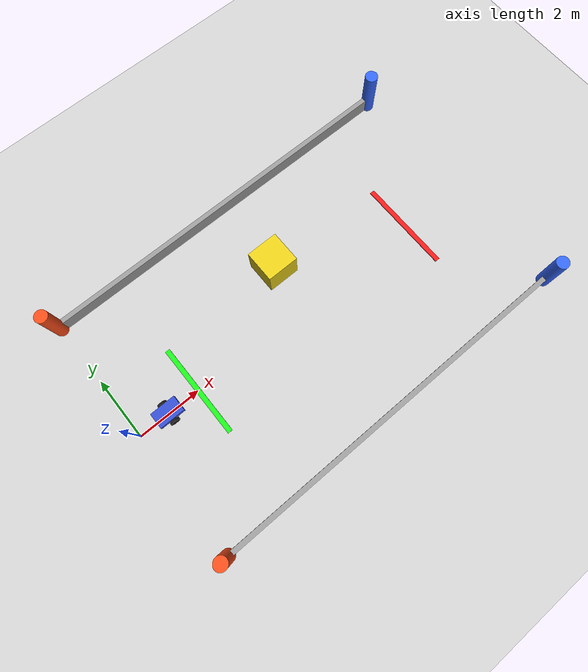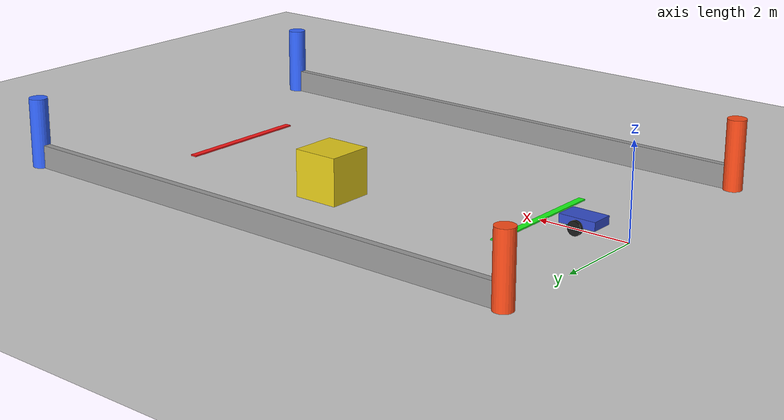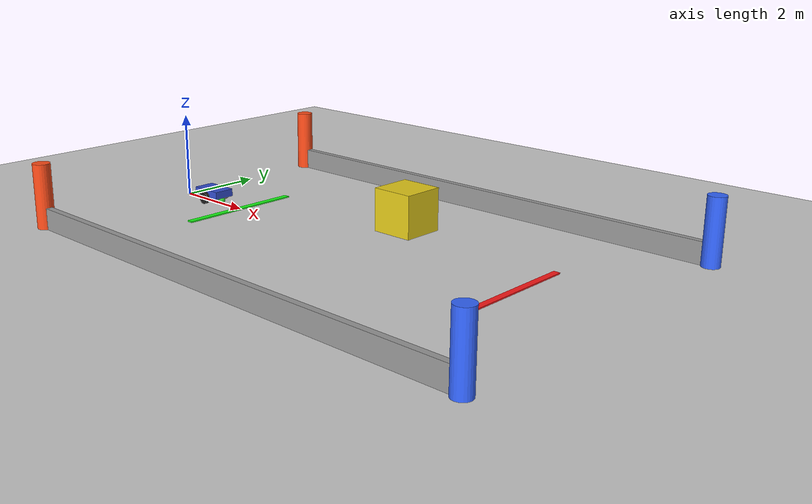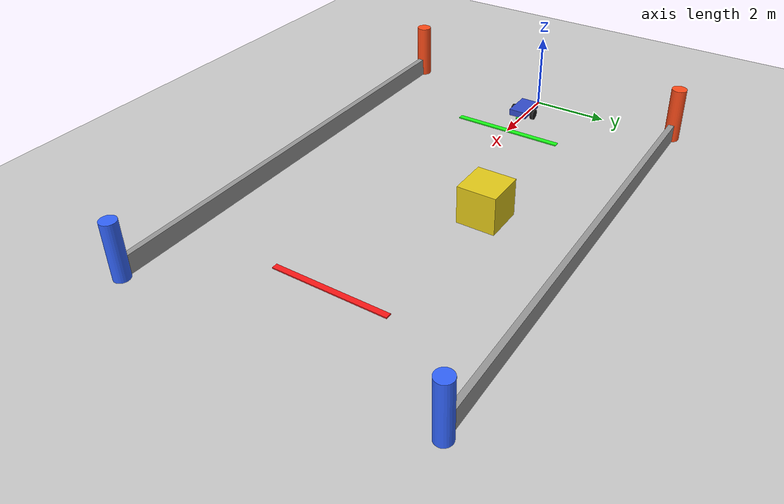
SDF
<?xml version="1.0" encoding="UTF-8"?>
<sdf version="1.9">
  <world name="uav_ugv">
    <physics type="ode">
      <max_step_size>0.004</max_step_size>
      <real_time_factor>1.0</real_time_factor>
      <real_time_update_rate>250</real_time_update_rate>
    </physics>
    <gravity>0 0 -9.8</gravity>
    <magnetic_field>6e-06 2.3e-05 -4.2e-05</magnetic_field>
    <atmosphere type="adiabatic"/>
    <scene>
      <grid>false</grid>
      <ambient>0.4 0.4 0.4 1</ambient>
      <background>0.7 0.7 0.7 1</background>
      <shadows>true</shadows>
    </scene>
    <model name="ground_plane">
      <static>true</static>
      <link name="link">
        <collision name="collision">
          <geometry>
            <plane>
              <normal>0 0 1</normal>
              <size>1 1</size>
            </plane>
          </geometry>
          <surface>
            <friction>
              <ode/>
            </friction>
            <bounce/>
            <contact/>
          </surface>
        </collision>
        <visual name="visual">
          <geometry>
            <plane>
              <normal>0 0 1</normal>
              <size>500 500</size>
            </plane>
          </geometry>
          <material>
            <ambient>0.8 0.8 0.8 1</ambient>
            <diffuse>0.8 0.8 0.8 1</diffuse>
            <specular>0.8 0.8 0.8 1</specular>
          </material>
        </visual>
        <pose>0 0 0 0 -0 0</pose>
        <inertial>
          <pose>0 0 0 0 -0 0</pose>
          <mass>1</mass>
          <inertia>
            <ixx>1</ixx>
            <ixy>0</ixy>
            <ixz>0</ixz>
            <iyy>1</iyy>
            <iyz>0</iyz>
            <izz>1</izz>
          </inertia>
        </inertial>
        <enable_wind>false</enable_wind>
      </link>
      <pose>0 0 0 0 -0 0</pose>
      <self_collide>false</self_collide>
    </model>
    <light name="sunUTC" type="directional">
      <pose>0 0 500 0 -0 0</pose>
      <cast_shadows>true</cast_shadows>
      <intensity>1</intensity>
      <direction>0.001 0.625 -0.78</direction>
      <diffuse>0.904 0.904 0.904 1</diffuse>
      <specular>0.271 0.271 0.271 1</specular>
      <attenuation>
        <range>2000</range>
        <linear>0</linear>
        <constant>1</constant>
        <quadratic>0</quadratic>
      </attenuation>
      <spot>
        <inner_angle>0</inner_angle>
        <outer_angle>0</outer_angle>
        <falloff>0</falloff>
      </spot>
    </light>
    <spherical_coordinates>
      <surface_model>EARTH_WGS84</surface_model>
      <world_frame_orientation>ENU</world_frame_orientation>
      <latitude_deg>47.397971057728974</latitude_deg>
      <longitude_deg> 8.546163739800146</longitude_deg>
      <elevation>0</elevation>
    </spherical_coordinates>
    <model name="simple_ugv">

      <pose>1 0 0 0 0 0</pose>

      <!-- Main body -->
      <link name="chassis">
        <pose>0 0 0.25 0 0 0</pose>

        <inertial>
          <mass>5.0</mass>
          <inertia>
            <ixx>0.15</ixx>
            <iyy>0.25</iyy>
            <izz>0.30</izz>
          </inertia>
        </inertial>

        <collision name="collision">
          <geometry>
            <box>
              <size>0.8 0.5 0.18</size>
            </box>
          </geometry>
        </collision>

        <visual name="visual">
          <geometry>
            <box>
              <size>0.8 0.5 0.18</size>
            </box>
          </geometry>

          <material>
            <ambient>0.2 0.3 0.8 1</ambient>
            <diffuse>0.2 0.3 0.8 1</diffuse>
          </material>
        </visual>
      </link>

      <!-- Left drive wheel -->
      <link name="left_wheel">
        <pose>0 0.30 0.15 -1.5708 0 0</pose>

        <inertial>
          <mass>0.5</mass>
          <inertia>
            <ixx>0.005</ixx>
            <iyy>0.005</iyy>
            <izz>0.008</izz>
          </inertia>
        </inertial>

        <collision name="collision">
          <geometry>
            <cylinder>
              <radius>0.15</radius>
              <length>0.08</length>
            </cylinder>
          </geometry>
        </collision>

        <visual name="visual">
          <geometry>
            <cylinder>
              <radius>0.15</radius>
              <length>0.08</length>
            </cylinder>
          </geometry>

          <material>
            <ambient>0.1 0.1 0.1 1</ambient>
            <diffuse>0.1 0.1 0.1 1</diffuse>
          </material>
        </visual>
      </link>

      <!-- Right drive wheel -->
      <link name="right_wheel">
        <pose>0 -0.30 0.15 -1.5708 0 0</pose>

        <inertial>
          <mass>0.5</mass>
          <inertia>
            <ixx>0.005</ixx>
            <iyy>0.005</iyy>
            <izz>0.008</izz>
          </inertia>
        </inertial>

        <collision name="collision">
          <geometry>
            <cylinder>
              <radius>0.15</radius>
              <length>0.08</length>
            </cylinder>
          </geometry>
        </collision>

        <visual name="visual">
          <geometry>
            <cylinder>
              <radius>0.15</radius>
              <length>0.08</length>
            </cylinder>
          </geometry>

          <material>
            <ambient>0.1 0.1 0.1 1</ambient>
            <diffuse>0.1 0.1 0.1 1</diffuse>
          </material>
        </visual>
      </link>

      <!-- Front caster -->
      <link name="caster">
        <pose>0.30 0 0.08 0 0 0</pose>

        <inertial>
          <mass>0.2</mass>
          <inertia>
            <ixx>0.001</ixx>
            <iyy>0.001</iyy>
            <izz>0.001</izz>
          </inertia>
        </inertial>

        <collision name="collision">
          <geometry>
            <sphere>
              <radius>0.08</radius>
            </sphere>
          </geometry>
        </collision>

        <visual name="visual">
          <geometry>
            <sphere>
              <radius>0.08</radius>
            </sphere>
          </geometry>

          <material>
            <ambient>0.2 0.8 0.2 1</ambient>
            <diffuse>0.2 0.8 0.2 1</diffuse>
          </material>
        </visual>
      </link>

      <!-- Wheel joints -->
      <joint name="left_wheel_joint" type="revolute">
        <pose relative_to="left_wheel"/>
        <parent>chassis</parent>
        <child>left_wheel</child>

        <axis>
          <xyz expressed_in="__model__">0 1 0</xyz>
          <limit>
            <lower>-1.79769e+308</lower>
            <upper>1.79769e+308</upper>
          </limit>
        </axis>
      </joint>

      <joint name="right_wheel_joint" type="revolute">
        <pose relative_to="right_wheel"/>
        <parent>chassis</parent>
        <child>right_wheel</child>

        <axis>
          <xyz expressed_in="__model__">0 1 0</xyz>
          <limit>
            <lower>-1.79769e+308</lower>
            <upper>1.79769e+308</upper>
          </limit>
        </axis>
      </joint>

      <!-- Caster can rotate freely -->
      <joint name="caster_joint" type="ball">
        <parent>chassis</parent>
        <child>caster</child>
      </joint>

      <!-- Differential drive controller -->
      <plugin
        filename="gz-sim-diff-drive-system"
        name="gz::sim::systems::DiffDrive">

        <left_joint>left_wheel_joint</left_joint>
        <right_joint>right_wheel_joint</right_joint>

        <wheel_separation>0.60</wheel_separation>
        <wheel_radius>0.15</wheel_radius>

        <odom_publish_frequency>20</odom_publish_frequency>

        <topic>/simple_ugv/cmd_vel</topic>
      </plugin>

    </model>
    <!-- SIMPLE UAV / UGV TEST COURSE                              -->

    <!-- Left boundary wall -->
    <model name="left_wall">
      <static>true</static>
      <pose>6 4 0.25 0 0 0</pose>

      <link name="link">
        <collision name="collision">
          <geometry>
            <box>
              <size>12 0.15 0.5</size>
            </box>
          </geometry>
        </collision>

        <visual name="visual">
          <geometry>
            <box>
              <size>12 0.15 0.5</size>
            </box>
          </geometry>

          <material>
            <ambient>0.6 0.6 0.6 1</ambient>
            <diffuse>0.6 0.6 0.6 1</diffuse>
          </material>
        </visual>
      </link>
    </model>

    <!-- Right boundary wall -->
    <model name="right_wall">
      <static>true</static>
      <pose>6 -4 0.25 0 0 0</pose>

      <link name="link">
        <collision name="collision">
          <geometry>
            <box>
              <size>12 0.15 0.5</size>
            </box>
          </geometry>
        </collision>

        <visual name="visual">
          <geometry>
            <box>
              <size>12 0.15 0.5</size>
            </box>
          </geometry>

          <material>
            <ambient>0.6 0.6 0.6 1</ambient>
            <diffuse>0.6 0.6 0.6 1</diffuse>
          </material>
        </visual>
      </link>
    </model>

    <!-- CORNER POSTS                                               -->

    <!-- Southwest -->
    <model name="post_sw">
      <static>true</static>
      <pose>0 -4 0.75 0 0 0</pose>

      <link name="link">
        <collision name="collision">
          <geometry>
            <cylinder>
              <radius>0.2</radius>
              <length>1.5</length>
            </cylinder>
          </geometry>
        </collision>

        <visual name="visual">
          <geometry>
            <cylinder>
              <radius>0.2</radius>
              <length>1.5</length>
            </cylinder>
          </geometry>

          <material>
            <ambient>1 0.3 0.1 1</ambient>
            <diffuse>1 0.3 0.1 1</diffuse>
          </material>
        </visual>
      </link>
    </model>

    <!-- Northwest -->
    <model name="post_nw">
      <static>true</static>
      <pose>0 4 0.75 0 0 0</pose>

      <link name="link">
        <collision name="collision">
          <geometry>
            <cylinder>
              <radius>0.2</radius>
              <length>1.5</length>
            </cylinder>
          </geometry>
        </collision>

        <visual name="visual">
          <geometry>
            <cylinder>
              <radius>0.2</radius>
              <length>1.5</length>
            </cylinder>
          </geometry>

          <material>
            <ambient>1 0.3 0.1 1</ambient>
            <diffuse>1 0.3 0.1 1</diffuse>
          </material>
        </visual>
      </link>
    </model>

    <!-- Southeast -->
    <model name="post_se">
      <static>true</static>
      <pose>12 -4 0.75 0 0 0</pose>

      <link name="link">
        <collision name="collision">
          <geometry>
            <cylinder>
              <radius>0.2</radius>
              <length>1.5</length>
            </cylinder>
          </geometry>
        </collision>

        <visual name="visual">
          <geometry>
            <cylinder>
              <radius>0.2</radius>
              <length>1.5</length>
            </cylinder>
          </geometry>

          <material>
            <ambient>0.2 0.4 1 1</ambient>
            <diffuse>0.2 0.4 1 1</diffuse>
          </material>
        </visual>
      </link>
    </model>

    <!-- Northeast -->
    <model name="post_ne">
      <static>true</static>
      <pose>12 4 0.75 0 0 0</pose>

      <link name="link">
        <collision name="collision">
          <geometry>
            <cylinder>
              <radius>0.2</radius>
              <length>1.5</length>
            </cylinder>
          </geometry>
        </collision>

        <visual name="visual">
          <geometry>
            <cylinder>
              <radius>0.2</radius>
              <length>1.5</length>
            </cylinder>
          </geometry>

          <material>
            <ambient>0.2 0.4 1 1</ambient>
            <diffuse>0.2 0.4 1 1</diffuse>
          </material>
        </visual>
      </link>
    </model>

    <!-- START LINE                                                 -->

    <model name="start_line">
      <static>true</static>
      <pose>2 0 0.015 0 0 0</pose>

      <link name="link">
        <visual name="visual">
          <geometry>
            <box>
              <size>0.15 3 0.03</size>
            </box>
          </geometry>

          <material>
            <ambient>0.1 1 0.1 1</ambient>
            <diffuse>0.1 1 0.1 1</diffuse>
          </material>
        </visual>
      </link>
    </model>

    <!-- FINISH LINE                                                -->

    <model name="finish_line">
      <static>true</static>
      <pose>10 0 0.015 0 0 0</pose>

      <link name="link">
        <visual name="visual">
          <geometry>
            <box>
              <size>0.15 3 0.03</size>
            </box>
          </geometry>

          <material>
            <ambient>1 0.1 0.1 1</ambient>
            <diffuse>1 0.1 0.1 1</diffuse>
          </material>
        </visual>
      </link>
    </model>

    <!-- Center obstacle -->
    <model name="center_obstacle">
      <static>true</static>
      <pose>6 1.5 0.5 0 0 0</pose>

      <link name="link">
        <collision name="collision">
          <geometry>
            <box>
              <size>1 1 1</size>
            </box>
          </geometry>
        </collision>

        <visual name="visual">
          <geometry>
            <box>
              <size>1 1 1</size>
            </box>
          </geometry>

          <material>
            <ambient>0.9 0.8 0.1 1</ambient>
            <diffuse>0.9 0.8 0.1 1</diffuse>
          </material>
        </visual>
      </link>
    </model>
  </world>
</sdf>
